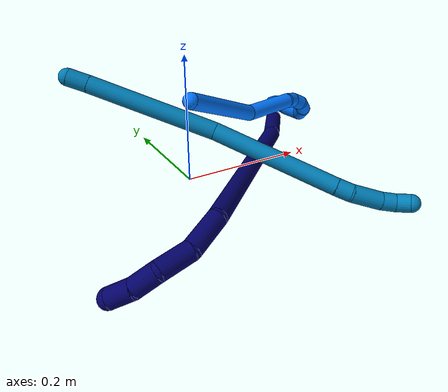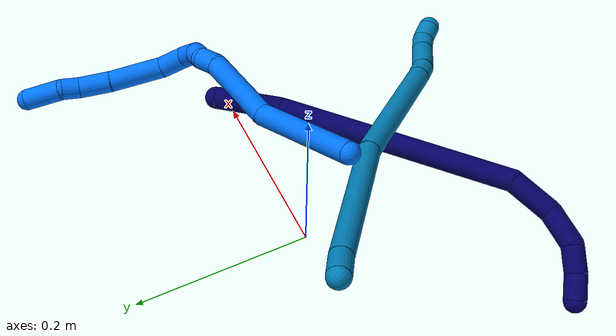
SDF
<sdf version="1.7">
 <world name="default">
  <model name="photoneo_s_sensor">
   <static>1</static>
   <pose>0 0 2 1.57079 1.57079 3.14159</pose>
   <link name="link">
    <inertial><mass>0.1</mass></inertial>
    <sensor name="sensor" type="depth">
     <update_rate>30</update_rate>
     <camera>
      <horizontal_fov>1.22</horizontal_fov>
      <image><width>1920</width><height>1200</height><format>B8G8R8</format></image>
      <clip><near>0.1</near><far>4</far></clip>
      <depth_camera><output>points</output></depth_camera>
     </camera>
     <plugin name="camera_plugin" filename="libgazebo_ros_depth_camera.so">
      <baseline>0.2</baseline>
      <alwaysOn>1</alwaysOn>
      <updateRate>0.0</updateRate>
      <cameraName>camera_ir</cameraName>
      <imageTopicName>/camera/color/image_raw</imageTopicName>
      <cameraInfoTopicName>/camera/color/camera_info</cameraInfoTopicName>
      <depthImageTopicName>/camera/depth/image_raw</depthImageTopicName>
      <depthImageCameraInfoTopicName>/camera/depth/camera_info</depthImageCameraInfoTopicName>
      <pointCloudTopicName>/camera/depth/points</pointCloudTopicName>
      <frameName>fr_optical</frameName>
      <pointCloudCutoff>0.1</pointCloudCutoff>
      <pointCloudCutoffMax>2.0</pointCloudCutoffMax>
      <distortionK1>0</distortionK1>
      <distortionK2>0</distortionK2>
      <distortionK3>0</distortionK3>
      <distortionT1>0</distortionT1>
      <distortionT2>0</distortionT2>
      <CxPrime>0</CxPrime>
      <Cx>0</Cx>
      <Cy>0</Cy>
      <focalLength>0</focalLength>
      <hackBaseline>0</hackBaseline>
     </plugin>
    </sensor>
   </link>
  </model>
  <model name="bin">
   <static>1</static>
   <link name="bottom">
    <collision name="collision-bottom">
     <pose>0 0 -0.01 0 -0 0</pose>
     <geometry><box><size>0.8 0.6 0.02</size></box></geometry>
     <surface>
      <friction><ode><mu>100</mu><mu2>100</mu2></ode></friction>
      <contact><collide_bitmask>65535</collide_bitmask></contact>
     </surface>
    </collision>
   </link>
   <link name="west_wall">
    <collision name="collision-west_wall">
     <pose>-0.41 0 0.1 0 -0 0</pose>
     <geometry><box><size>0.02 0.6 0.2</size></box></geometry>
     <surface>
      <friction><ode><mu>100</mu><mu2>100</mu2></ode></friction>
      <contact><collide_bitmask>65535</collide_bitmask></contact>
     </surface>
    </collision>
   </link>
   <link name="east_wall">
    <collision name="collision-east_wall">
     <pose>0.41 0 0.1 0 -0 0</pose>
     <geometry><box><size>0.02 0.6 0.2</size></box></geometry>
     <surface>
      <friction><ode><mu>100</mu><mu2>100</mu2></ode></friction>
      <contact><collide_bitmask>65535</collide_bitmask></contact>
     </surface>
    </collision>
   </link>
   <link name="south_wall">
    <collision name="collision-south_wall">
     <pose>0 -0.31 0.1 0 -0 0</pose>
     <geometry><box><size>0.8 0.02 0.2</size></box></geometry>
     <surface>
      <friction><ode><mu>100</mu><mu2>100</mu2></ode></friction>
      <contact><collide_bitmask>65535</collide_bitmask></contact>
     </surface>
    </collision>
   </link>
   <link name="north_wall">
    <collision name="collision-north_wall">
     <pose>0 0.31 0.1 0 -0 0</pose>
     <geometry><box><size>0.8 0.02 0.2</size></box></geometry>
     <surface>
      <friction><ode><mu>100</mu><mu2>100</mu2></ode></friction>
      <contact><collide_bitmask>65535</collide_bitmask></contact>
     </surface>
    </collision>
   </link>
  </model>
  <model name="7">
   <static>0</static>
   <link name="7">
    <collision name="collision-cylinder-e_1_1_4">
     <pose>-0.027642 -0.012289 0.023159 0.487871 -0.811846 -0.213133</pose>
     <geometry><cylinder><radius>0.0125</radius><length>0.076196</length></cylinder></geometry>
     <surface>
      <friction><ode><mu>1.16</mu><mu2>1.16</mu2><slip1>0</slip1><slip2>0</slip2></ode></friction>
      <contact><ode><kp>1e+06</kp><kd>1</kd><max_vel>0</max_vel><min_depth>0.001</min_depth></ode></contact>
     </surface>
    </collision>
    <visual name="visual-cylinder-e_1_1_4">
     <pose>-0.027642 -0.012289 0.023159 0.487871 -0.811846 -0.213133</pose>
     <geometry><cylinder><radius>0.0125</radius><length>0.076196</length></cylinder></geometry>
     <material><ambient>0.003922 0 0.403922 1</ambient></material>
    </visual>
    <collision name="collision-cylinder-e_2_4_5">
     <pose>-0.163722 -0.077631 0.107741 0.712401 -0.928271 -0.368305</pose>
     <geometry><cylinder><radius>0.0125</radius><length>0.270895</length></cylinder></geometry>
     <surface>
      <friction><ode><mu>1.16</mu><mu2>1.16</mu2><slip1>0</slip1><slip2>0</slip2></ode></friction>
      <contact><ode><kp>1e+06</kp><kd>1</kd><max_vel>0</max_vel><min_depth>0.001</min_depth></ode></contact>
     </surface>
    </collision>
    <visual name="visual-cylinder-e_2_4_5">
     <pose>-0.163722 -0.077631 0.107741 0.712401 -0.928271 -0.368305</pose>
     <geometry><cylinder><radius>0.0125</radius><length>0.270895</length></cylinder></geometry>
     <material><ambient>0.003922 0 0.403922 1</ambient></material>
    </visual>
    <collision name="collision-cylinder-e_3_5_6">
     <pose>-0.288953 -0.148745 0.175711 1.22307 -0.718354 -0.51487</pose>
     <geometry><cylinder><radius>0.0125</radius><length>0.051035</length></cylinder></geometry>
     <surface>
      <friction><ode><mu>1.16</mu><mu2>1.16</mu2><slip1>0</slip1><slip2>0</slip2></ode></friction>
      <contact><ode><kp>1e+06</kp><kd>1</kd><max_vel>0</max_vel><min_depth>0.001</min_depth></ode></contact>
     </surface>
    </collision>
    <visual name="visual-cylinder-e_3_5_6">
     <pose>-0.288953 -0.148745 0.175711 1.22307 -0.718354 -0.51487</pose>
     <geometry><cylinder><radius>0.0125</radius><length>0.051035</length></cylinder></geometry>
     <material><ambient>0.003922 0 0.403922 1</ambient></material>
    </visual>
    <collision name="collision-cylinder-e_4_6_7">
     <pose>-0.31946 -0.182256 0.179779 1.72992 -0.719618 -0.831303</pose>
     <geometry><cylinder><radius>0.0125</radius><length>0.04161</length></cylinder></geometry>
     <surface>
      <friction><ode><mu>1.16</mu><mu2>1.16</mu2><slip1>0</slip1><slip2>0</slip2></ode></friction>
      <contact><ode><kp>1e+06</kp><kd>1</kd><max_vel>0</max_vel><min_depth>0.001</min_depth></ode></contact>
     </surface>
    </collision>
    <visual name="visual-cylinder-e_4_6_7">
     <pose>-0.31946 -0.182256 0.179779 1.72992 -0.719618 -0.831303</pose>
     <geometry><cylinder><radius>0.0125</radius><length>0.04161</length></cylinder></geometry>
     <material><ambient>0.003922 0 0.403922 1</ambient></material>
    </visual>
    <collision name="collision-cylinder-e_5_7_8">
     <pose>-0.337131 -0.211762 0.172138 1.92268 -0.258404 -0.368012</pose>
     <geometry><cylinder><radius>0.0125</radius><length>0.030977</length></cylinder></geometry>
     <surface>
      <friction><ode><mu>1.16</mu><mu2>1.16</mu2><slip1>0</slip1><slip2>0</slip2></ode></friction>
      <contact><ode><kp>1e+06</kp><kd>1</kd><max_vel>0</max_vel><min_depth>0.001</min_depth></ode></contact>
     </surface>
    </collision>
    <visual name="visual-cylinder-e_5_7_8">
     <pose>-0.337131 -0.211762 0.172138 1.92268 -0.258404 -0.368012</pose>
     <geometry><cylinder><radius>0.0125</radius><length>0.030977</length></cylinder></geometry>
     <material><ambient>0.003922 0 0.403922 1</ambient></material>
    </visual>
    <collision name="collision-cylinder-e_6_8_2">
     <pose>-0.344523 -0.237685 0.159115 2.15595 -0.236753 -0.4359</pose>
     <geometry><cylinder><radius>0.0125</radius><length>0.029286</length></cylinder></geometry>
     <surface>
      <friction><ode><mu>1.16</mu><mu2>1.16</mu2><slip1>0</slip1><slip2>0</slip2></ode></friction>
      <contact><ode><kp>1e+06</kp><kd>1</kd><max_vel>0</max_vel><min_depth>0.001</min_depth></ode></contact>
     </surface>
    </collision>
    <visual name="visual-cylinder-e_6_8_2">
     <pose>-0.344523 -0.237685 0.159115 2.15595 -0.236753 -0.4359</pose>
     <geometry><cylinder><radius>0.0125</radius><length>0.029286</length></cylinder></geometry>
     <material><ambient>0.003922 0 0.403922 1</ambient></material>
    </visual>
    <collision name="collision-sphere-2">
     <pose>-0.347958 -0.249552 0.151253 0 -0 0</pose>
     <geometry><sphere><radius>0.0125</radius></sphere></geometry>
     <surface>
      <friction><ode><mu>1.16</mu><mu2>1.16</mu2><slip1>0</slip1><slip2>0</slip2></ode></friction>
      <contact><ode><kp>1e+06</kp><kd>1</kd><max_vel>0</max_vel><min_depth>0.001</min_depth></ode></contact>
     </surface>
    </collision>
    <visual name="visual-sphere-2">
     <pose>-0.347958 -0.249552 0.151253 0 -0 0</pose>
     <geometry><sphere><radius>0.0125</radius></sphere></geometry>
     <material><ambient>0.003922 0 0.403922 1</ambient></material>
    </visual>
    <collision name="collision-sphere-4">
     <pose>-0.055285 -0.024579 0.046318 0 -0 0</pose>
     <geometry><sphere><radius>0.0125</radius></sphere></geometry>
     <surface>
      <friction><ode><mu>1.16</mu><mu2>1.16</mu2><slip1>0</slip1><slip2>0</slip2></ode></friction>
      <contact><ode><kp>1e+06</kp><kd>1</kd><max_vel>0</max_vel><min_depth>0.001</min_depth></ode></contact>
     </surface>
    </collision>
    <visual name="visual-sphere-4">
     <pose>-0.055285 -0.024579 0.046318 0 -0 0</pose>
     <geometry><sphere><radius>0.0125</radius></sphere></geometry>
     <material><ambient>0.003922 0 0.403922 1</ambient></material>
    </visual>
    <collision name="collision-sphere-1">
     <geometry><sphere><radius>0.0125</radius></sphere></geometry>
     <surface>
      <friction><ode><mu>1.16</mu><mu2>1.16</mu2><slip1>0</slip1><slip2>0</slip2></ode></friction>
      <contact><ode><kp>1e+06</kp><kd>1</kd><max_vel>0</max_vel><min_depth>0.001</min_depth></ode></contact>
     </surface>
    </collision>
    <visual name="visual-sphere-1">
     <geometry><sphere><radius>0.0125</radius></sphere></geometry>
     <material><ambient>0.003922 0 0.403922 1</ambient></material>
    </visual>
    <collision name="collision-sphere-8">
     <pose>-0.341089 -0.225819 0.166977 0 -0 0</pose>
     <geometry><sphere><radius>0.0125</radius></sphere></geometry>
     <surface>
      <friction><ode><mu>1.16</mu><mu2>1.16</mu2><slip1>0</slip1><slip2>0</slip2></ode></friction>
      <contact><ode><kp>1e+06</kp><kd>1</kd><max_vel>0</max_vel><min_depth>0.001</min_depth></ode></contact>
     </surface>
    </collision>
    <visual name="visual-sphere-8">
     <pose>-0.341089 -0.225819 0.166977 0 -0 0</pose>
     <geometry><sphere><radius>0.0125</radius></sphere></geometry>
     <material><ambient>0.003922 0 0.403922 1</ambient></material>
    </visual>
    <collision name="collision-sphere-5">
     <pose>-0.272159 -0.130683 0.169165 0 -0 0</pose>
     <geometry><sphere><radius>0.0125</radius></sphere></geometry>
     <surface>
      <friction><ode><mu>1.16</mu><mu2>1.16</mu2><slip1>0</slip1><slip2>0</slip2></ode></friction>
      <contact><ode><kp>1e+06</kp><kd>1</kd><max_vel>0</max_vel><min_depth>0.001</min_depth></ode></contact>
     </surface>
    </collision>
    <visual name="visual-sphere-5">
     <pose>-0.272159 -0.130683 0.169165 0 -0 0</pose>
     <geometry><sphere><radius>0.0125</radius></sphere></geometry>
     <material><ambient>0.003922 0 0.403922 1</ambient></material>
    </visual>
    <collision name="collision-sphere-6">
     <pose>-0.305748 -0.166807 0.182258 0 -0 0</pose>
     <geometry><sphere><radius>0.0125</radius></sphere></geometry>
     <surface>
      <friction><ode><mu>1.16</mu><mu2>1.16</mu2><slip1>0</slip1><slip2>0</slip2></ode></friction>
      <contact><ode><kp>1e+06</kp><kd>1</kd><max_vel>0</max_vel><min_depth>0.001</min_depth></ode></contact>
     </surface>
    </collision>
    <visual name="visual-sphere-6">
     <pose>-0.305748 -0.166807 0.182258 0 -0 0</pose>
     <geometry><sphere><radius>0.0125</radius></sphere></geometry>
     <material><ambient>0.003922 0 0.403922 1</ambient></material>
    </visual>
    <collision name="collision-sphere-7">
     <pose>-0.333173 -0.197705 0.1773 0 -0 0</pose>
     <geometry><sphere><radius>0.0125</radius></sphere></geometry>
     <surface>
      <friction><ode><mu>1.16</mu><mu2>1.16</mu2><slip1>0</slip1><slip2>0</slip2></ode></friction>
      <contact><ode><kp>1e+06</kp><kd>1</kd><max_vel>0</max_vel><min_depth>0.001</min_depth></ode></contact>
     </surface>
    </collision>
    <visual name="visual-sphere-7">
     <pose>-0.333173 -0.197705 0.1773 0 -0 0</pose>
     <geometry><sphere><radius>0.0125</radius></sphere></geometry>
     <material><ambient>0.003922 0 0.403922 1</ambient></material>
    </visual>
    <inertial>
     <pose>-0.190061 -0.101324 0.114783 0 -0 0</pose>
     <mass>0.5</mass>
     <inertia>
      <ixx>0.000573</ixx>
      <ixy>0</ixy>
      <ixz>0</ixz>
      <iyy>0.00114</iyy>
      <iyz>0</iyz>
      <izz>0.002078</izz>
     </inertia>
    </inertial>
   </link>
   <pose>0.179619 0.027998 0.061516 1.8111 0.564492 0.378481</pose>
  </model>
  <model name="9">
   <static>0</static>
   <link name="9">
    <collision name="collision-cylinder-e_1_1_4">
     <pose>0.007081 -0.008221 -0.009608 2.43388 0.510503 1.22999</pose>
     <geometry><cylinder><radius>0.0125</radius><length>0.028986</length></cylinder></geometry>
     <surface>
      <friction><ode><mu>1.16</mu><mu2>1.16</mu2><slip1>0</slip1><slip2>0</slip2></ode></friction>
      <contact><ode><kp>1e+06</kp><kd>1</kd><max_vel>0</max_vel><min_depth>0.001</min_depth></ode></contact>
     </surface>
    </collision>
    <visual name="visual-cylinder-e_1_1_4">
     <pose>0.007081 -0.008221 -0.009608 2.43388 0.510503 1.22999</pose>
     <geometry><cylinder><radius>0.0125</radius><length>0.028986</length></cylinder></geometry>
     <material><ambient>0 0.490196 0.709804 1</ambient></material>
    </visual>
    <collision name="collision-cylinder-e_2_4_5">
     <pose>0.059933 -0.062643 -0.084722 2.52731 0.518814 1.39345</pose>
     <geometry><cylinder><radius>0.0125</radius><length>0.184614</length></cylinder></geometry>
     <surface>
      <friction><ode><mu>1.16</mu><mu2>1.16</mu2><slip1>0</slip1><slip2>0</slip2></ode></friction>
      <contact><ode><kp>1e+06</kp><kd>1</kd><max_vel>0</max_vel><min_depth>0.001</min_depth></ode></contact>
     </surface>
    </collision>
    <visual name="visual-cylinder-e_2_4_5">
     <pose>0.059933 -0.062643 -0.084722 2.52731 0.518814 1.39345</pose>
     <geometry><cylinder><radius>0.0125</radius><length>0.184614</length></cylinder></geometry>
     <material><ambient>0 0.490196 0.709804 1</ambient></material>
    </visual>
    <collision name="collision-cylinder-e_3_5_6">
     <pose>0.150869 -0.139085 -0.222761 2.7466 0.52163 1.85491</pose>
     <geometry><cylinder><radius>0.0125</radius><length>0.181277</length></cylinder></geometry>
     <surface>
      <friction><ode><mu>1.16</mu><mu2>1.16</mu2><slip1>0</slip1><slip2>0</slip2></ode></friction>
      <contact><ode><kp>1e+06</kp><kd>1</kd><max_vel>0</max_vel><min_depth>0.001</min_depth></ode></contact>
     </surface>
    </collision>
    <visual name="visual-cylinder-e_3_5_6">
     <pose>0.150869 -0.139085 -0.222761 2.7466 0.52163 1.85491</pose>
     <geometry><cylinder><radius>0.0125</radius><length>0.181277</length></cylinder></geometry>
     <material><ambient>0 0.490196 0.709804 1</ambient></material>
    </visual>
    <collision name="collision-cylinder-e_4_6_7">
     <pose>0.201296 -0.1734 -0.303903 2.6994 0.504741 1.70774</pose>
     <geometry><cylinder><radius>0.0125</radius><length>0.021763</length></cylinder></geometry>
     <surface>
      <friction><ode><mu>1.16</mu><mu2>1.16</mu2><slip1>0</slip1><slip2>0</slip2></ode></friction>
      <contact><ode><kp>1e+06</kp><kd>1</kd><max_vel>0</max_vel><min_depth>0.001</min_depth></ode></contact>
     </surface>
    </collision>
    <visual name="visual-cylinder-e_4_6_7">
     <pose>0.201296 -0.1734 -0.303903 2.6994 0.504741 1.70774</pose>
     <geometry><cylinder><radius>0.0125</radius><length>0.021763</length></cylinder></geometry>
     <material><ambient>0 0.490196 0.709804 1</ambient></material>
    </visual>
    <collision name="collision-cylinder-e_5_7_8">
     <pose>0.215975 -0.190338 -0.326545 2.39971 0.459398 1.08256</pose>
     <geometry><cylinder><radius>0.0125</radius><length>0.042476</length></cylinder></geometry>
     <surface>
      <friction><ode><mu>1.16</mu><mu2>1.16</mu2><slip1>0</slip1><slip2>0</slip2></ode></friction>
      <contact><ode><kp>1e+06</kp><kd>1</kd><max_vel>0</max_vel><min_depth>0.001</min_depth></ode></contact>
     </surface>
    </collision>
    <visual name="visual-cylinder-e_5_7_8">
     <pose>0.215975 -0.190338 -0.326545 2.39971 0.459398 1.08256</pose>
     <geometry><cylinder><radius>0.0125</radius><length>0.042476</length></cylinder></geometry>
     <material><ambient>0 0.490196 0.709804 1</ambient></material>
    </visual>
    <collision name="collision-cylinder-e_6_8_9">
     <pose>0.228499 -0.209421 -0.348262 2.4611 0.304501 0.817968</pose>
     <geometry><cylinder><radius>0.0125</radius><length>0.020726</length></cylinder></geometry>
     <surface>
      <friction><ode><mu>1.16</mu><mu2>1.16</mu2><slip1>0</slip1><slip2>0</slip2></ode></friction>
      <contact><ode><kp>1e+06</kp><kd>1</kd><max_vel>0</max_vel><min_depth>0.001</min_depth></ode></contact>
     </surface>
    </collision>
    <visual name="visual-cylinder-e_6_8_9">
     <pose>0.228499 -0.209421 -0.348262 2.4611 0.304501 0.817968</pose>
     <geometry><cylinder><radius>0.0125</radius><length>0.020726</length></cylinder></geometry>
     <material><ambient>0 0.490196 0.709804 1</ambient></material>
    </visual>
    <collision name="collision-cylinder-e_7_9_2">
     <pose>0.232112 -0.219173 -0.365373 2.78307 0.050297 0.275858</pose>
     <geometry><cylinder><radius>0.0125</radius><length>0.020158</length></cylinder></geometry>
     <surface>
      <friction><ode><mu>1.16</mu><mu2>1.16</mu2><slip1>0</slip1><slip2>0</slip2></ode></friction>
      <contact><ode><kp>1e+06</kp><kd>1</kd><max_vel>0</max_vel><min_depth>0.001</min_depth></ode></contact>
     </surface>
    </collision>
    <visual name="visual-cylinder-e_7_9_2">
     <pose>0.232112 -0.219173 -0.365373 2.78307 0.050297 0.275858</pose>
     <geometry><cylinder><radius>0.0125</radius><length>0.020158</length></cylinder></geometry>
     <material><ambient>0 0.490196 0.709804 1</ambient></material>
    </visual>
    <collision name="collision-sphere-2">
     <pose>0.232619 -0.222705 -0.374799 0 -0 0</pose>
     <geometry><sphere><radius>0.0125</radius></sphere></geometry>
     <surface>
      <friction><ode><mu>1.16</mu><mu2>1.16</mu2><slip1>0</slip1><slip2>0</slip2></ode></friction>
      <contact><ode><kp>1e+06</kp><kd>1</kd><max_vel>0</max_vel><min_depth>0.001</min_depth></ode></contact>
     </surface>
    </collision>
    <visual name="visual-sphere-2">
     <pose>0.232619 -0.222705 -0.374799 0 -0 0</pose>
     <geometry><sphere><radius>0.0125</radius></sphere></geometry>
     <material><ambient>0 0.490196 0.709804 1</ambient></material>
    </visual>
    <collision name="collision-sphere-9">
     <pose>0.231606 -0.215641 -0.355947 0 -0 0</pose>
     <geometry><sphere><radius>0.0125</radius></sphere></geometry>
     <surface>
      <friction><ode><mu>1.16</mu><mu2>1.16</mu2><slip1>0</slip1><slip2>0</slip2></ode></friction>
      <contact><ode><kp>1e+06</kp><kd>1</kd><max_vel>0</max_vel><min_depth>0.001</min_depth></ode></contact>
     </surface>
    </collision>
    <visual name="visual-sphere-9">
     <pose>0.231606 -0.215641 -0.355947 0 -0 0</pose>
     <geometry><sphere><radius>0.0125</radius></sphere></geometry>
     <material><ambient>0 0.490196 0.709804 1</ambient></material>
    </visual>
    <collision name="collision-sphere-4">
     <pose>0.014163 -0.016441 -0.019216 0 -0 0</pose>
     <geometry><sphere><radius>0.0125</radius></sphere></geometry>
     <surface>
      <friction><ode><mu>1.16</mu><mu2>1.16</mu2><slip1>0</slip1><slip2>0</slip2></ode></friction>
      <contact><ode><kp>1e+06</kp><kd>1</kd><max_vel>0</max_vel><min_depth>0.001</min_depth></ode></contact>
     </surface>
    </collision>
    <visual name="visual-sphere-4">
     <pose>0.014163 -0.016441 -0.019216 0 -0 0</pose>
     <geometry><sphere><radius>0.0125</radius></sphere></geometry>
     <material><ambient>0 0.490196 0.709804 1</ambient></material>
    </visual>
    <collision name="collision-sphere-1">
     <geometry><sphere><radius>0.0125</radius></sphere></geometry>
     <surface>
      <friction><ode><mu>1.16</mu><mu2>1.16</mu2><slip1>0</slip1><slip2>0</slip2></ode></friction>
      <contact><ode><kp>1e+06</kp><kd>1</kd><max_vel>0</max_vel><min_depth>0.001</min_depth></ode></contact>
     </surface>
    </collision>
    <visual name="visual-sphere-1">
     <geometry><sphere><radius>0.0125</radius></sphere></geometry>
     <material><ambient>0 0.490196 0.709804 1</ambient></material>
    </visual>
    <collision name="collision-sphere-8">
     <pose>0.225392 -0.2032 -0.340578 0 -0 0</pose>
     <geometry><sphere><radius>0.0125</radius></sphere></geometry>
     <surface>
      <friction><ode><mu>1.16</mu><mu2>1.16</mu2><slip1>0</slip1><slip2>0</slip2></ode></friction>
      <contact><ode><kp>1e+06</kp><kd>1</kd><max_vel>0</max_vel><min_depth>0.001</min_depth></ode></contact>
     </surface>
    </collision>
    <visual name="visual-sphere-8">
     <pose>0.225392 -0.2032 -0.340578 0 -0 0</pose>
     <geometry><sphere><radius>0.0125</radius></sphere></geometry>
     <material><ambient>0 0.490196 0.709804 1</ambient></material>
    </visual>
    <collision name="collision-sphere-5">
     <pose>0.105704 -0.108846 -0.150228 0 -0 0</pose>
     <geometry><sphere><radius>0.0125</radius></sphere></geometry>
     <surface>
      <friction><ode><mu>1.16</mu><mu2>1.16</mu2><slip1>0</slip1><slip2>0</slip2></ode></friction>
      <contact><ode><kp>1e+06</kp><kd>1</kd><max_vel>0</max_vel><min_depth>0.001</min_depth></ode></contact>
     </surface>
    </collision>
    <visual name="visual-sphere-5">
     <pose>0.105704 -0.108846 -0.150228 0 -0 0</pose>
     <geometry><sphere><radius>0.0125</radius></sphere></geometry>
     <material><ambient>0 0.490196 0.709804 1</ambient></material>
    </visual>
    <collision name="collision-sphere-6">
     <pose>0.196033 -0.169325 -0.295295 0 -0 0</pose>
     <geometry><sphere><radius>0.0125</radius></sphere></geometry>
     <surface>
      <friction><ode><mu>1.16</mu><mu2>1.16</mu2><slip1>0</slip1><slip2>0</slip2></ode></friction>
      <contact><ode><kp>1e+06</kp><kd>1</kd><max_vel>0</max_vel><min_depth>0.001</min_depth></ode></contact>
     </surface>
    </collision>
    <visual name="visual-sphere-6">
     <pose>0.196033 -0.169325 -0.295295 0 -0 0</pose>
     <geometry><sphere><radius>0.0125</radius></sphere></geometry>
     <material><ambient>0 0.490196 0.709804 1</ambient></material>
    </visual>
    <collision name="collision-sphere-7">
     <pose>0.206558 -0.177476 -0.312512 0 -0 0</pose>
     <geometry><sphere><radius>0.0125</radius></sphere></geometry>
     <surface>
      <friction><ode><mu>1.16</mu><mu2>1.16</mu2><slip1>0</slip1><slip2>0</slip2></ode></friction>
      <contact><ode><kp>1e+06</kp><kd>1</kd><max_vel>0</max_vel><min_depth>0.001</min_depth></ode></contact>
     </surface>
    </collision>
    <visual name="visual-sphere-7">
     <pose>0.206558 -0.177476 -0.312512 0 -0 0</pose>
     <geometry><sphere><radius>0.0125</radius></sphere></geometry>
     <material><ambient>0 0.490196 0.709804 1</ambient></material>
    </visual>
    <inertial>
     <pose>0.123176 -0.115266 -0.182737 0 -0 0</pose>
     <mass>0.5</mass>
     <inertia>
      <ixx>0.000869</ixx>
      <ixy>0</ixy>
      <ixz>0</ixz>
      <iyy>0.001162</iyy>
      <iyz>0</iyz>
      <izz>-0.000107</izz>
     </inertia>
    </inertial>
   </link>
   <pose>-0.154824 0.044718 0.179345 -2.97069 1.37875 -1.05735</pose>
  </model>
  <model name="14">
   <static>0</static>
   <link name="14">
    <collision name="collision-cylinder-e_1_1_4">
     <pose>0.042455 -0.00113 0.055128 0.020493 0.656146 0.006976</pose>
     <geometry><cylinder><radius>0.0125</radius><length>0.139181</length></cylinder></geometry>
     <surface>
      <friction><ode><mu>1.16</mu><mu2>1.16</mu2><slip1>0</slip1><slip2>0</slip2></ode></friction>
      <contact><ode><kp>1e+06</kp><kd>1</kd><max_vel>0</max_vel><min_depth>0.001</min_depth></ode></contact>
     </surface>
    </collision>
    <visual name="visual-cylinder-e_1_1_4">
     <pose>0.042455 -0.00113 0.055128 0.020493 0.656146 0.006976</pose>
     <geometry><cylinder><radius>0.0125</radius><length>0.139181</length></cylinder></geometry>
     <material><ambient>0 0.462745 1 1</ambient></material>
    </visual>
    <collision name="collision-cylinder-e_2_4_5">
     <pose>0.102702 0.012497 0.149194 -0.362259 0.403814 -0.07494</pose>
     <geometry><cylinder><radius>0.0125</radius><length>0.090563</length></cylinder></geometry>
     <surface>
      <friction><ode><mu>1.16</mu><mu2>1.16</mu2><slip1>0</slip1><slip2>0</slip2></ode></friction>
      <contact><ode><kp>1e+06</kp><kd>1</kd><max_vel>0</max_vel><min_depth>0.001</min_depth></ode></contact>
     </surface>
    </collision>
    <visual name="visual-cylinder-e_2_4_5">
     <pose>0.102702 0.012497 0.149194 -0.362259 0.403814 -0.07494</pose>
     <geometry><cylinder><radius>0.0125</radius><length>0.090563</length></cylinder></geometry>
     <material><ambient>0 0.462745 1 1</ambient></material>
    </visual>
    <collision name="collision-cylinder-e_3_5_6">
     <pose>0.128339 0.029402 0.196643 -0.247261 0.729213 -0.094785</pose>
     <geometry><cylinder><radius>0.0125</radius><length>0.023548</length></cylinder></geometry>
     <surface>
      <friction><ode><mu>1.16</mu><mu2>1.16</mu2><slip1>0</slip1><slip2>0</slip2></ode></friction>
      <contact><ode><kp>1e+06</kp><kd>1</kd><max_vel>0</max_vel><min_depth>0.001</min_depth></ode></contact>
     </surface>
    </collision>
    <visual name="visual-cylinder-e_3_5_6">
     <pose>0.128339 0.029402 0.196643 -0.247261 0.729213 -0.094785</pose>
     <geometry><cylinder><radius>0.0125</radius><length>0.023548</length></cylinder></geometry>
     <material><ambient>0 0.462745 1 1</ambient></material>
    </visual>
    <collision name="collision-cylinder-e_4_6_7">
     <pose>0.14013 0.02988 0.214219 0.182313 0.404528 0.037486</pose>
     <geometry><cylinder><radius>0.0125</radius><length>0.02005</length></cylinder></geometry>
     <surface>
      <friction><ode><mu>1.16</mu><mu2>1.16</mu2><slip1>0</slip1><slip2>0</slip2></ode></friction>
      <contact><ode><kp>1e+06</kp><kd>1</kd><max_vel>0</max_vel><min_depth>0.001</min_depth></ode></contact>
     </surface>
    </collision>
    <visual name="visual-cylinder-e_4_6_7">
     <pose>0.14013 0.02988 0.214219 0.182313 0.404528 0.037486</pose>
     <geometry><cylinder><radius>0.0125</radius><length>0.02005</length></cylinder></geometry>
     <material><ambient>0 0.462745 1 1</ambient></material>
    </visual>
    <collision name="collision-cylinder-e_5_7_8">
     <pose>0.152592 0.024281 0.229866 0.537929 0.837929 0.244283</pose>
     <geometry><cylinder><radius>0.0125</radius><length>0.022918</length></cylinder></geometry>
     <surface>
      <friction><ode><mu>1.16</mu><mu2>1.16</mu2><slip1>0</slip1><slip2>0</slip2></ode></friction>
      <contact><ode><kp>1e+06</kp><kd>1</kd><max_vel>0</max_vel><min_depth>0.001</min_depth></ode></contact>
     </surface>
    </collision>
    <visual name="visual-cylinder-e_5_7_8">
     <pose>0.152592 0.024281 0.229866 0.537929 0.837929 0.244283</pose>
     <geometry><cylinder><radius>0.0125</radius><length>0.022918</length></cylinder></geometry>
     <material><ambient>0 0.462745 1 1</ambient></material>
    </visual>
    <collision name="collision-cylinder-e_6_8_9">
     <pose>0.177652 0.018003 0.239475 0.660323 1.3432 0.5319</pose>
     <geometry><cylinder><radius>0.0125</radius><length>0.033962</length></cylinder></geometry>
     <surface>
      <friction><ode><mu>1.16</mu><mu2>1.16</mu2><slip1>0</slip1><slip2>0</slip2></ode></friction>
      <contact><ode><kp>1e+06</kp><kd>1</kd><max_vel>0</max_vel><min_depth>0.001</min_depth></ode></contact>
     </surface>
    </collision>
    <visual name="visual-cylinder-e_6_8_9">
     <pose>0.177652 0.018003 0.239475 0.660323 1.3432 0.5319</pose>
     <geometry><cylinder><radius>0.0125</radius><length>0.033962</length></cylinder></geometry>
     <material><ambient>0 0.462745 1 1</ambient></material>
    </visual>
    <collision name="collision-cylinder-e_7_9_10">
     <pose>0.225198 0.023005 0.240867 -1.78962 1.3325 -1.55081</pose>
     <geometry><cylinder><radius>0.0125</radius><length>0.063809</length></cylinder></geometry>
     <surface>
      <friction><ode><mu>1.16</mu><mu2>1.16</mu2><slip1>0</slip1><slip2>0</slip2></ode></friction>
      <contact><ode><kp>1e+06</kp><kd>1</kd><max_vel>0</max_vel><min_depth>0.001</min_depth></ode></contact>
     </surface>
    </collision>
    <visual name="visual-cylinder-e_7_9_10">
     <pose>0.225198 0.023005 0.240867 -1.78962 1.3325 -1.55081</pose>
     <geometry><cylinder><radius>0.0125</radius><length>0.063809</length></cylinder></geometry>
     <material><ambient>0 0.462745 1 1</ambient></material>
    </visual>
    <collision name="collision-cylinder-e_8_10_11">
     <pose>0.274631 0.035419 0.239747 -1.46944 1.30138 -1.20497</pose>
     <geometry><cylinder><radius>0.0125</radius><length>0.038238</length></cylinder></geometry>
     <surface>
      <friction><ode><mu>1.16</mu><mu2>1.16</mu2><slip1>0</slip1><slip2>0</slip2></ode></friction>
      <contact><ode><kp>1e+06</kp><kd>1</kd><max_vel>0</max_vel><min_depth>0.001</min_depth></ode></contact>
     </surface>
    </collision>
    <visual name="visual-cylinder-e_8_10_11">
     <pose>0.274631 0.035419 0.239747 -1.46944 1.30138 -1.20497</pose>
     <geometry><cylinder><radius>0.0125</radius><length>0.038238</length></cylinder></geometry>
     <material><ambient>0 0.462745 1 1</ambient></material>
    </visual>
    <collision name="collision-cylinder-e_9_11_12">
     <pose>0.302558 0.045682 0.239096 -1.79141 1.05947 -1.26302</pose>
     <geometry><cylinder><radius>0.0125</radius><length>0.021783</length></cylinder></geometry>
     <surface>
      <friction><ode><mu>1.16</mu><mu2>1.16</mu2><slip1>0</slip1><slip2>0</slip2></ode></friction>
      <contact><ode><kp>1e+06</kp><kd>1</kd><max_vel>0</max_vel><min_depth>0.001</min_depth></ode></contact>
     </surface>
    </collision>
    <visual name="visual-cylinder-e_9_11_12">
     <pose>0.302558 0.045682 0.239096 -1.79141 1.05947 -1.26302</pose>
     <geometry><cylinder><radius>0.0125</radius><length>0.021783</length></cylinder></geometry>
     <material><ambient>0 0.462745 1 1</ambient></material>
    </visual>
    <collision name="collision-cylinder-e_10_12_2">
     <pose>0.3348 0.052703 0.24062 -0.595024 1.42891 -0.519822</pose>
     <geometry><cylinder><radius>0.0125</radius><length>0.045948</length></cylinder></geometry>
     <surface>
      <friction><ode><mu>1.16</mu><mu2>1.16</mu2><slip1>0</slip1><slip2>0</slip2></ode></friction>
      <contact><ode><kp>1e+06</kp><kd>1</kd><max_vel>0</max_vel><min_depth>0.001</min_depth></ode></contact>
     </surface>
    </collision>
    <visual name="visual-cylinder-e_10_12_2">
     <pose>0.3348 0.052703 0.24062 -0.595024 1.42891 -0.519822</pose>
     <geometry><cylinder><radius>0.0125</radius><length>0.045948</length></cylinder></geometry>
     <material><ambient>0 0.462745 1 1</ambient></material>
    </visual>
    <collision name="collision-sphere-2">
     <pose>0.357544 0.054524 0.24331 0 -0 0</pose>
     <geometry><sphere><radius>0.0125</radius></sphere></geometry>
     <surface>
      <friction><ode><mu>1.16</mu><mu2>1.16</mu2><slip1>0</slip1><slip2>0</slip2></ode></friction>
      <contact><ode><kp>1e+06</kp><kd>1</kd><max_vel>0</max_vel><min_depth>0.001</min_depth></ode></contact>
     </surface>
    </collision>
    <visual name="visual-sphere-2">
     <pose>0.357544 0.054524 0.24331 0 -0 0</pose>
     <geometry><sphere><radius>0.0125</radius></sphere></geometry>
     <material><ambient>0 0.462745 1 1</ambient></material>
    </visual>
    <collision name="collision-sphere-12">
     <pose>0.312057 0.050882 0.237929 0 -0 0</pose>
     <geometry><sphere><radius>0.0125</radius></sphere></geometry>
     <surface>
      <friction><ode><mu>1.16</mu><mu2>1.16</mu2><slip1>0</slip1><slip2>0</slip2></ode></friction>
      <contact><ode><kp>1e+06</kp><kd>1</kd><max_vel>0</max_vel><min_depth>0.001</min_depth></ode></contact>
     </surface>
    </collision>
    <visual name="visual-sphere-12">
     <pose>0.312057 0.050882 0.237929 0 -0 0</pose>
     <geometry><sphere><radius>0.0125</radius></sphere></geometry>
     <material><ambient>0 0.462745 1 1</ambient></material>
    </visual>
    <collision name="collision-sphere-11">
     <pose>0.29306 0.040482 0.240262 0 -0 0</pose>
     <geometry><sphere><radius>0.0125</radius></sphere></geometry>
     <surface>
      <friction><ode><mu>1.16</mu><mu2>1.16</mu2><slip1>0</slip1><slip2>0</slip2></ode></friction>
      <contact><ode><kp>1e+06</kp><kd>1</kd><max_vel>0</max_vel><min_depth>0.001</min_depth></ode></contact>
     </surface>
    </collision>
    <visual name="visual-sphere-11">
     <pose>0.29306 0.040482 0.240262 0 -0 0</pose>
     <geometry><sphere><radius>0.0125</radius></sphere></geometry>
     <material><ambient>0 0.462745 1 1</ambient></material>
    </visual>
    <collision name="collision-sphere-10">
     <pose>0.256201 0.030356 0.239232 0 -0 0</pose>
     <geometry><sphere><radius>0.0125</radius></sphere></geometry>
     <surface>
      <friction><ode><mu>1.16</mu><mu2>1.16</mu2><slip1>0</slip1><slip2>0</slip2></ode></friction>
      <contact><ode><kp>1e+06</kp><kd>1</kd><max_vel>0</max_vel><min_depth>0.001</min_depth></ode></contact>
     </surface>
    </collision>
    <visual name="visual-sphere-10">
     <pose>0.256201 0.030356 0.239232 0 -0 0</pose>
     <geometry><sphere><radius>0.0125</radius></sphere></geometry>
     <material><ambient>0 0.462745 1 1</ambient></material>
    </visual>
    <collision name="collision-sphere-9">
     <pose>0.194195 0.015653 0.242502 0 -0 0</pose>
     <geometry><sphere><radius>0.0125</radius></sphere></geometry>
     <surface>
      <friction><ode><mu>1.16</mu><mu2>1.16</mu2><slip1>0</slip1><slip2>0</slip2></ode></friction>
      <contact><ode><kp>1e+06</kp><kd>1</kd><max_vel>0</max_vel><min_depth>0.001</min_depth></ode></contact>
     </surface>
    </collision>
    <visual name="visual-sphere-9">
     <pose>0.194195 0.015653 0.242502 0 -0 0</pose>
     <geometry><sphere><radius>0.0125</radius></sphere></geometry>
     <material><ambient>0 0.462745 1 1</ambient></material>
    </visual>
    <collision name="collision-sphere-4">
     <pose>0.08491 -0.00226 0.110257 0 -0 0</pose>
     <geometry><sphere><radius>0.0125</radius></sphere></geometry>
     <surface>
      <friction><ode><mu>1.16</mu><mu2>1.16</mu2><slip1>0</slip1><slip2>0</slip2></ode></friction>
      <contact><ode><kp>1e+06</kp><kd>1</kd><max_vel>0</max_vel><min_depth>0.001</min_depth></ode></contact>
     </surface>
    </collision>
    <visual name="visual-sphere-4">
     <pose>0.08491 -0.00226 0.110257 0 -0 0</pose>
     <geometry><sphere><radius>0.0125</radius></sphere></geometry>
     <material><ambient>0 0.462745 1 1</ambient></material>
    </visual>
    <collision name="collision-sphere-1">
     <geometry><sphere><radius>0.0125</radius></sphere></geometry>
     <surface>
      <friction><ode><mu>1.16</mu><mu2>1.16</mu2><slip1>0</slip1><slip2>0</slip2></ode></friction>
      <contact><ode><kp>1e+06</kp><kd>1</kd><max_vel>0</max_vel><min_depth>0.001</min_depth></ode></contact>
     </surface>
    </collision>
    <visual name="visual-sphere-1">
     <geometry><sphere><radius>0.0125</radius></sphere></geometry>
     <material><ambient>0 0.462745 1 1</ambient></material>
    </visual>
    <collision name="collision-sphere-8">
     <pose>0.161109 0.020353 0.236449 0 -0 0</pose>
     <geometry><sphere><radius>0.0125</radius></sphere></geometry>
     <surface>
      <friction><ode><mu>1.16</mu><mu2>1.16</mu2><slip1>0</slip1><slip2>0</slip2></ode></friction>
      <contact><ode><kp>1e+06</kp><kd>1</kd><max_vel>0</max_vel><min_depth>0.001</min_depth></ode></contact>
     </surface>
    </collision>
    <visual name="visual-sphere-8">
     <pose>0.161109 0.020353 0.236449 0 -0 0</pose>
     <geometry><sphere><radius>0.0125</radius></sphere></geometry>
     <material><ambient>0 0.462745 1 1</ambient></material>
    </visual>
    <collision name="collision-sphere-5">
     <pose>0.120494 0.027253 0.188131 0 -0 0</pose>
     <geometry><sphere><radius>0.0125</radius></sphere></geometry>
     <surface>
      <friction><ode><mu>1.16</mu><mu2>1.16</mu2><slip1>0</slip1><slip2>0</slip2></ode></friction>
      <contact><ode><kp>1e+06</kp><kd>1</kd><max_vel>0</max_vel><min_depth>0.001</min_depth></ode></contact>
     </surface>
    </collision>
    <visual name="visual-sphere-5">
     <pose>0.120494 0.027253 0.188131 0 -0 0</pose>
     <geometry><sphere><radius>0.0125</radius></sphere></geometry>
     <material><ambient>0 0.462745 1 1</ambient></material>
    </visual>
    <collision name="collision-sphere-6">
     <pose>0.136184 0.031551 0.205156 0 -0 0</pose>
     <geometry><sphere><radius>0.0125</radius></sphere></geometry>
     <surface>
      <friction><ode><mu>1.16</mu><mu2>1.16</mu2><slip1>0</slip1><slip2>0</slip2></ode></friction>
      <contact><ode><kp>1e+06</kp><kd>1</kd><max_vel>0</max_vel><min_depth>0.001</min_depth></ode></contact>
     </surface>
    </collision>
    <visual name="visual-sphere-6">
     <pose>0.136184 0.031551 0.205156 0 -0 0</pose>
     <geometry><sphere><radius>0.0125</radius></sphere></geometry>
     <material><ambient>0 0.462745 1 1</ambient></material>
    </visual>
    <collision name="collision-sphere-7">
     <pose>0.144075 0.028209 0.223283 0 -0 0</pose>
     <geometry><sphere><radius>0.0125</radius></sphere></geometry>
     <surface>
      <friction><ode><mu>1.16</mu><mu2>1.16</mu2><slip1>0</slip1><slip2>0</slip2></ode></friction>
      <contact><ode><kp>1e+06</kp><kd>1</kd><max_vel>0</max_vel><min_depth>0.001</min_depth></ode></contact>
     </surface>
    </collision>
    <visual name="visual-sphere-7">
     <pose>0.144075 0.028209 0.223283 0 -0 0</pose>
     <geometry><sphere><radius>0.0125</radius></sphere></geometry>
     <material><ambient>0 0.462745 1 1</ambient></material>
    </visual>
    <inertial>
     <pose>0.154835 0.019346 0.168624 0 -0 0</pose>
     <mass>0.5</mass>
     <inertia>
      <ixx>0.000266</ixx>
      <ixy>0</ixy>
      <ixz>0</ixz>
      <iyy>0.000334</iyy>
      <iyz>0</iyz>
      <izz>-0.000221</izz>
     </inertia>
    </inertial>
   </link>
   <pose>-0.011421 -0.040517 0.144547 1.73242 0.418775 1.31934</pose>
  </model>
 </world>
</sdf>
